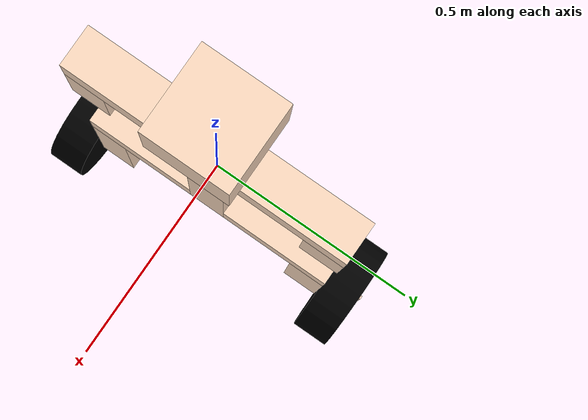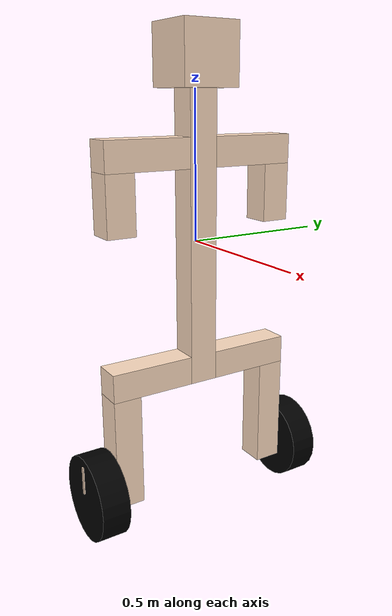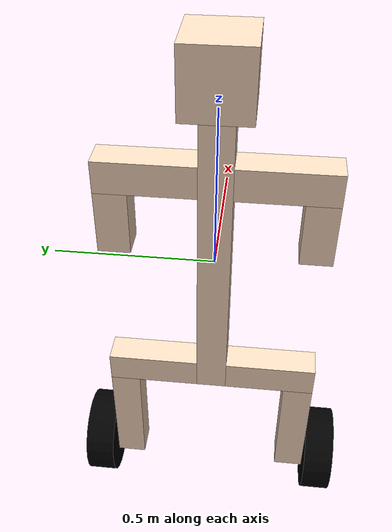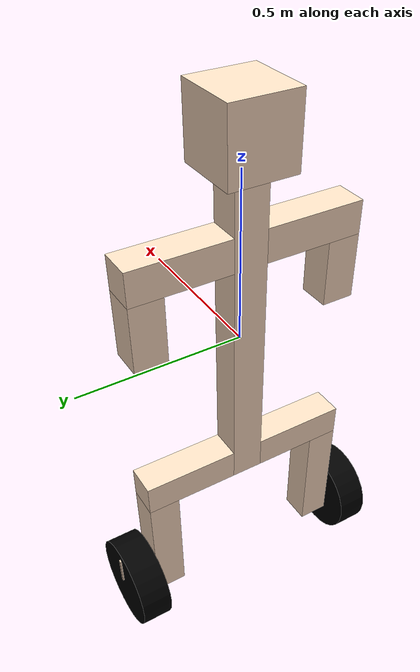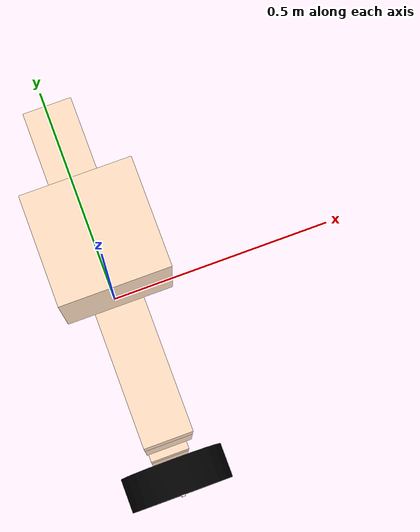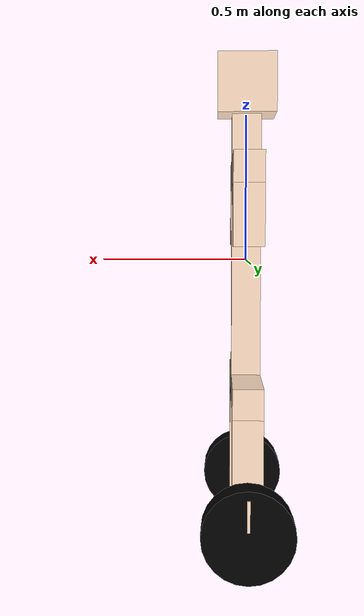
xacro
<?xml version="1.0"?>
<robot xmlns:xacro="http://www.ros.org/wiki/xacro" name="robot_bobot">
  <material name="skin">
    <color rgba="1 0.87 0.76 1" />
  </material>

  <material name="black">
    <color rgba="0 0 0 1" />
  </material>

  <!-- UTILS -->
  <xacro:macro name="shape" params="material *shape">
    <visual>
      <geometry>
        <xacro:insert_block name="shape" />
      </geometry>
      <material name="${material}" />
    </visual>
    <collision>
      <geometry>
        <xacro:insert_block name="shape" />
      </geometry>
    </collision>
  </xacro:macro>

  <xacro:macro
    name="joint" params="p c type **params">
    <joint name="${p}_to_${c}" type="${type}">
      <parent link="${p}" />
      <child link="${c}" />
      <xacro:insert_block name="params" />
    </joint>
  </xacro:macro>

  <xacro:macro name="inertia"
    params="mass x y z">
    <intertial>
      <mass value="${mass}" />
      <intertia ixx="${x}" iyy="${y}" izz="${z}" ixy="0" ixz="0" iyz="0" />
    </intertial>
  </xacro:macro>

  <!-- SHAPES -->
  <xacro:macro
    name="box_link" params="name x y z material density">
    <xacro:property name="m" value="${x*y*z*density}" />

    <link name="${name}">
      <xacro:shape material="${material}">
        <box size="${x} ${y} ${z}" />
      </xacro:shape>
      <xacro:inertia
        mass="${m}"
        x="${m * (y**2 + z**2) / 12}"
        y="${m * (x**2 + z**2) / 12}"
        z="${m * (x**2 + y**2) / 12}"
      />
    </link>
  </xacro:macro>

  <xacro:macro
    name="cylinder_link" params="name length radius material density">
    <xacro:property name="m" value="${density*length*pi*radius**2}" />

    <link name="${name}">
      <xacro:shape material="${material}">
        <cylinder length="${length}" radius="${radius}" />
      </xacro:shape>
      <xacro:inertia
        mass="${m}"
        x="${m * (3 * radius**2 + length**2)/12}"
        y="${m * (3 * radius**2 + length**2)/12}"
        z="${m * radius**2 /2}"
      />
    </link>
  </xacro:macro>

  <!-- BODY AND HEAD -->
  <link name="base_link" />

  <xacro:joint
    p="base_link" c="body" type="fixed">
    <params>
      <origin xyz="0 0 0" />
    </params>
  </xacro:joint>

  <xacro:box_link
    name="body"
    x="0.1" y="0.1" z="1"
    material="skin"
    density="1"
  />

  <xacro:box_link
    name="head"
    x="0.2" y="0.2" z="0.2"
    material="skin"
    density="1"
  />

  <xacro:joint p="body" c="head" type="fixed">
    <params>
      <origin xyz="0 0 0.6" />
    </params>
  </xacro:joint>

  <!-- ARMS -->
  <link name="shoulders" />

  <xacro:joint p="body"
    c="shoulders" type="fixed">
    <params>
      <origin xyz="0 0 0.3" />
    </params>
  </xacro:joint>

  <xacro:macro name="arm" params="name reflect">
    <xacro:box_link
      name="${name}_shoulder"
      x="0.1" y="0.3" z="0.1"
      material="skin"
      density="1"
    />

    <xacro:box_link
      name="${name}_arm"
      x="0.1" y="0.1" z="0.2"
      material="skin"
      density="1"
    />

    <xacro:joint p="shoulders" c="${name}_shoulder" type="fixed">
      <params>
        <origin xyz="0 ${reflect*0.2} 0" />
      </params>
    </xacro:joint>

    <xacro:joint p="${name}_shoulder" c="${name}_arm" type="fixed">
      <params>
        <origin xyz="0 ${reflect*0.1} -0.15" />
      </params>
    </xacro:joint>
  </xacro:macro>

  <xacro:arm name="right" reflect="1" />
  <xacro:arm name="left" reflect="-1" />

  <!-- LEGS -->
  <link name="butt" />
  <xacro:joint p="body" c="butt" type="fixed">
    <params>
      <origin xyz="0 0 -0.45" />
    </params>
  </xacro:joint>

  <xacro:macro name="leg" params="name reflect">
    <xacro:box_link
      name="${name}_thigh"
      x="0.1" y="0.3" z="0.1"
      material="skin"
      density="1"
    />

    <xacro:box_link
      name="${name}_shin"
      x="0.1" y="0.1" z="0.4"
      material="skin"
      density="1"
    />

    <xacro:joint p="butt" c="${name}_thigh" type="fixed">
      <params>
        <origin xyz="0 ${reflect*0.2} 0" />
      </params>
    </xacro:joint>

    <xacro:joint p="${name}_thigh" c="${name}_shin" type="fixed">
      <params>
        <origin xyz="0 ${reflect*0.1} -0.25" />
      </params>
    </xacro:joint>

    <xacro:cylinder_link
      name="${name}_wheel"
      length="0.1"
      radius="0.15"
      material="black"
      density="1"
    />

    <xacro:box_link
      name="${name}_wheel_tick"
      x="0.01" y="0.1" z="0.01"
      material="skin"
      density="1"
    />

    <xacro:joint p="${name}_shin" c="${name}_wheel" type="continuous">
      <params>
        <origin rpy="${pi/2} 0 0" xyz="0 ${reflect*0.1} -0.15" />
        <axis xyz="0 0 1" />
      </params>
    </xacro:joint>

    <xacro:joint p="${name}_wheel" c="${name}_wheel_tick" type="fixed">
      <params>
        <origin xyz="0 0.07 ${reflect*-0.05}" />
      </params>
    </xacro:joint>
  </xacro:macro>

  <xacro:leg name="right" reflect="1" />
  <xacro:leg name="left" reflect="-1" />
</robot>
